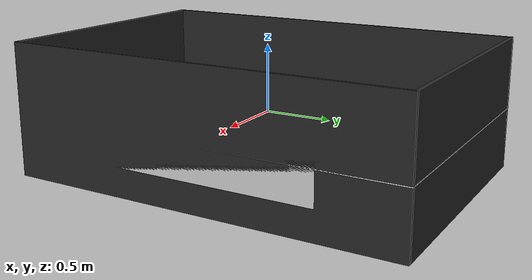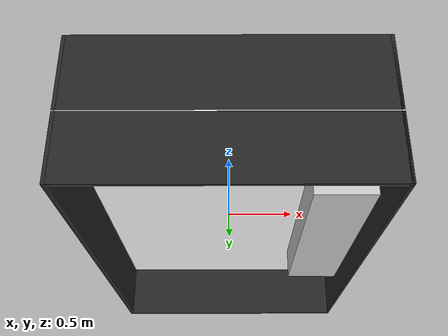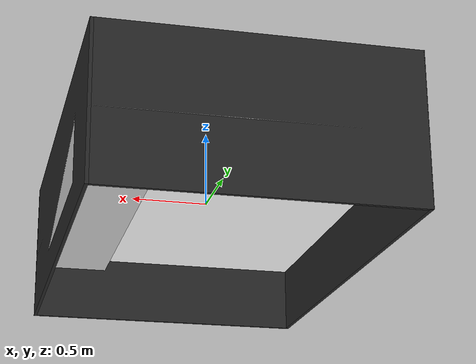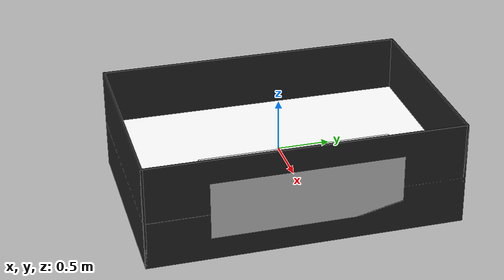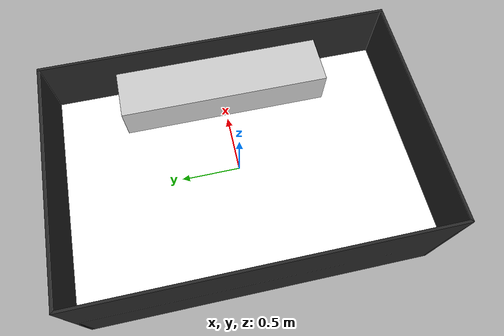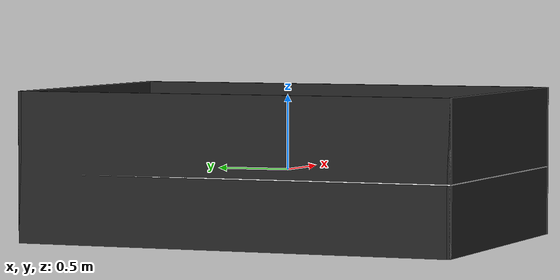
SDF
<?xml version="1.0"?>
<sdf version="1.9">
  <!-- Aire de jeu 3000 x 2000 mm avec bordures 70 mm (h) x 22 mm (ép) incluses -->
  <model name="floor_mat">
    <static>true</static>

    <link name="floor_link">
      <!-- ===== Tapis (2 x 3 x 0.007 m) ===== -->
      <collision name="mat_collision">
        <geometry>
          <box><size>2 3 0.007</size></box>
        </geometry>
        <surface>
          <friction><ode><mu>0.9</mu><mu2>0.9</mu2></ode></friction>
        </surface>
      </collision>

      <visual name="mat_visual">
        <geometry>
          <box><size>2 3 0.007</size></box>
        </geometry>
        <material>
          <diffuse>1 1 1 1</diffuse>
          <pbr>
            <metal>
              <albedo_map>file://models/mat/table.png</albedo_map>
              <metalness>0.0</metalness>
              <roughness>0.8</roughness>
            </metal>
          </pbr>
        </material>
      </visual>

      <!-- ===== Plateforme centrale (450 x 1800 x 55 mm) ===== -->
      <collision name="platform_collision">
        <pose>0.775 0.0 0.031 0 0 0</pose>
        <geometry>
          <box><size>0.45 1.8 0.555</size></box> <!--actually the z size is 0.055 m -->
        </geometry>
        <surface>
          <friction><ode><mu>0.9</mu><mu2>0.9</mu2></ode></friction>
        </surface>
      </collision>

      <visual name="platform_visual">
        <pose>0.775 0.0 0.031 0 0 0</pose>
        <geometry>
          <box><size>0.45 1.8 0.555</size></box> <!-- same thing here -->
        </geometry>
        <material>
          <diffuse>0.8 0.8 0.8 1</diffuse>
          <pbr><metal><metalness>0.0</metalness><roughness>0.9</roughness></metal></pbr>
        </material>
      </visual>

      <!-- Longue +X -->
      <collision name="border_long_posX_collision">
        <pose>0.989 0 0.0385 0 0 0</pose>
        <geometry><box><size>0.022 3.0 1</size></box></geometry>
        <surface><friction><ode><mu>0.9</mu><mu2>0.9</mu2></ode></friction></surface>
      </collision>
      <visual name="border_long_posX_visual">
        <pose>0.989 0 0.0385 0 0 0</pose>
        <geometry><box><size>0.022 3.0 1</size></box></geometry>
        <material><diffuse>0.15 0.15 0.15 1</diffuse></material>
      </visual>

      <!-- Longue -X -->
      <collision name="border_long_negX_collision">
        <pose>-0.989 0 0.0385 0 0 0</pose>
        <geometry><box><size>0.022 3.0 1</size></box></geometry>
        <surface><friction><ode><mu>0.9</mu><mu2>0.9</mu2></ode></friction></surface>
      </collision>
      <visual name="border_long_negX_visual">
        <pose>-0.989 0 0.0385 0 0 0</pose>
        <geometry><box><size>0.022 3.0 1</size></box></geometry>
        <material><diffuse>0.15 0.15 0.15 1</diffuse></material>
      </visual>

      <!-- Courte +Y -->
      <collision name="border_short_posY_collision">
        <pose>0 1.489 0.0385 0 0 0</pose>
        <geometry><box><size>2.0 0.022 1</size></box></geometry>
        <surface><friction><ode><mu>0.9</mu><mu2>0.9</mu2></ode></friction></surface>
      </collision>
      <visual name="border_short_posY_visual">
        <pose>0 1.489 0.0385 0 0 0</pose>
        <geometry><box><size>2.0 0.022 1</size></box></geometry>
        <material><diffuse>0.15 0.15 0.15 1</diffuse></material>
      </visual>

      <!-- Courte -Y -->
      <collision name="border_short_negY_collision">
        <pose>0 -1.489 0.0385 0 0 0</pose>
        <geometry><box><size>2.0 0.022 1</size></box></geometry>
        <surface><friction><ode><mu>0.9</mu><mu2>0.9</mu2></ode></friction></surface>
      </collision>
      <visual name="border_short_negY_visual">
        <pose>0 -1.489 0.0385 0 0 0</pose>
        <geometry><box><size>2.0 0.022 1</size></box></geometry>
        <material><diffuse>0.15 0.15 0.15 1</diffuse></material>
      </visual>

    </link>
  </model>
</sdf>
